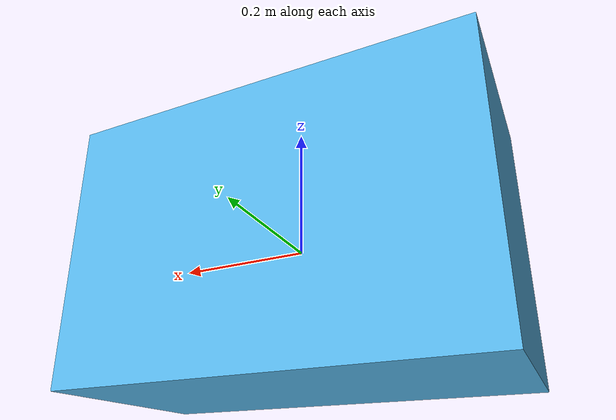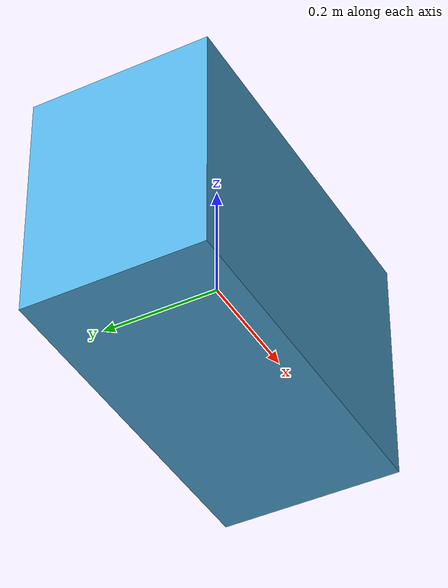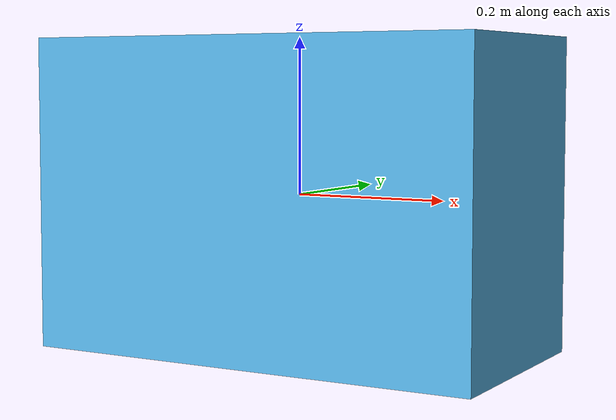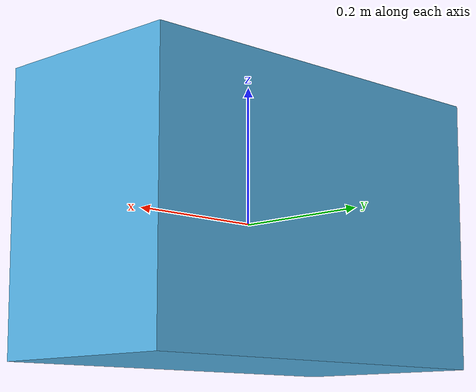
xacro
<?xml version="1.0" ?>
<robot name="littlebot" xmlns:xacro="http://www.ros.org/wiki/xacro">
    <link name="base_link"/>

    <link name="base">
        <visual>
            <origin xyz="0 0 0" rpy="0 0 0"/>
            <geometry>
                <box size="0.6 0.3 0.4"/>
            </geometry>
        </visual>
        <collision>
            <origin xyz="0 0 0" rpy="0 0 0"/>
            <geometry>
                <box size="0.6 0.3 0.4"/>
            </geometry>
        </collision>
        <inertial>
            <origin xyz="0 0 0" rpy="0 0 0"/>
            <mass value="1"/>
            <inertia ixx="1.02" ixy="0.0" ixz="0.0" iyy="1.56" iyz="0.0" izz="1.90"/>
        </inertial>
    </link>

    <!-- base_link to base joint -->
    <joint name="base_link_to_base" type="fixed">
      <parent link="base_link"/>
      <child link="base"/>
    </joint>

</robot>
